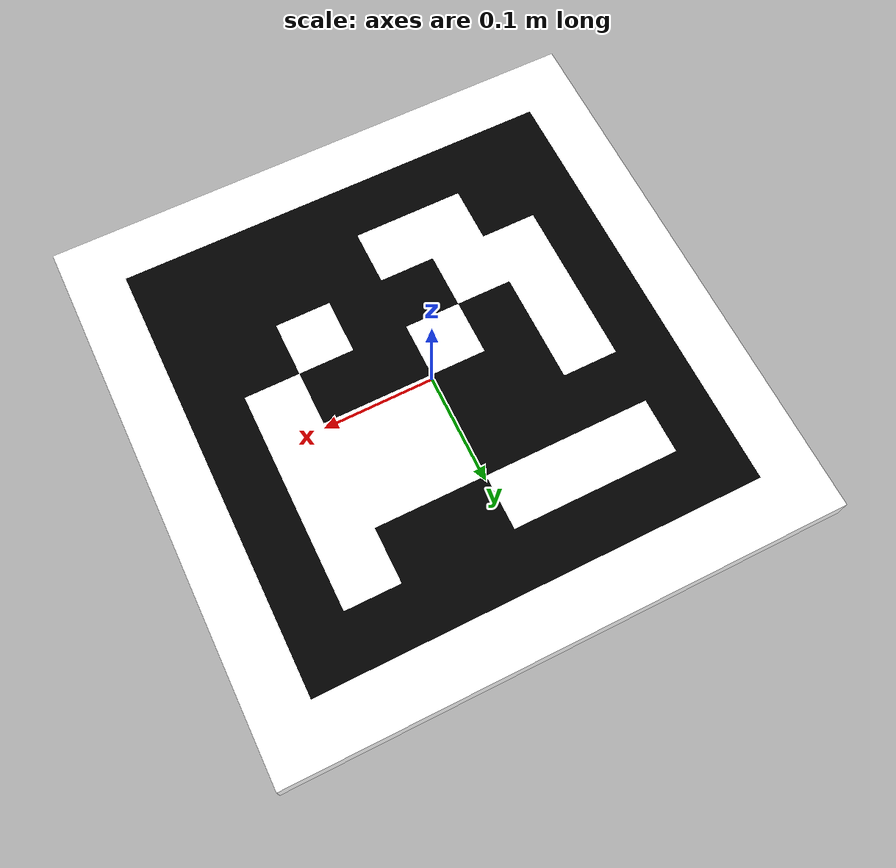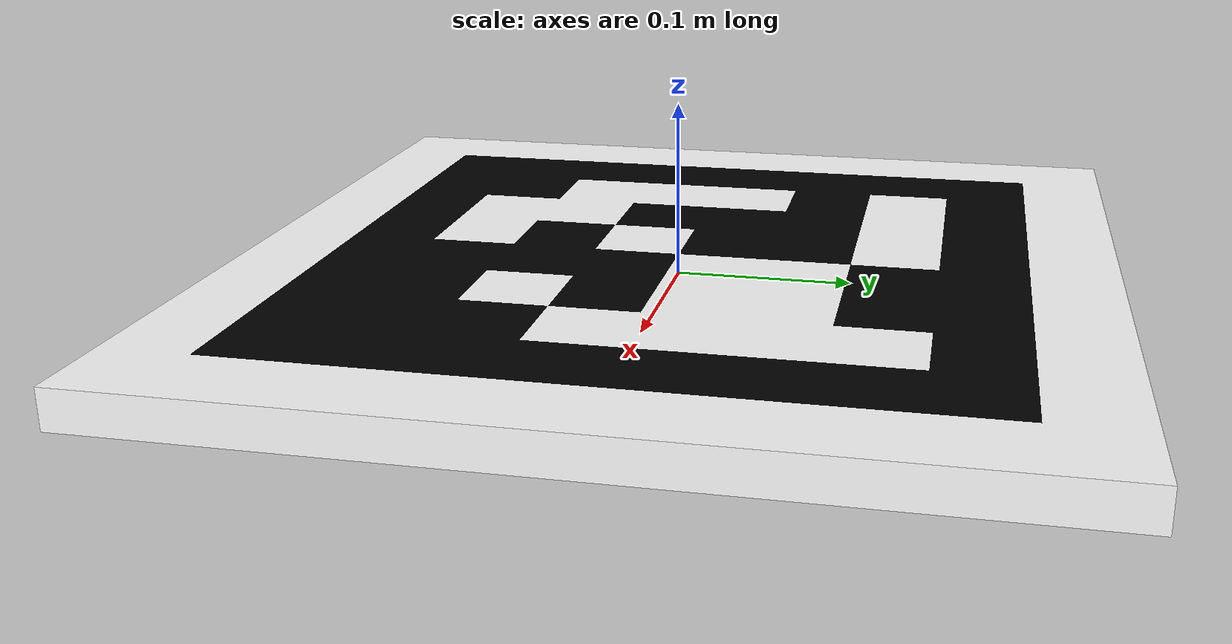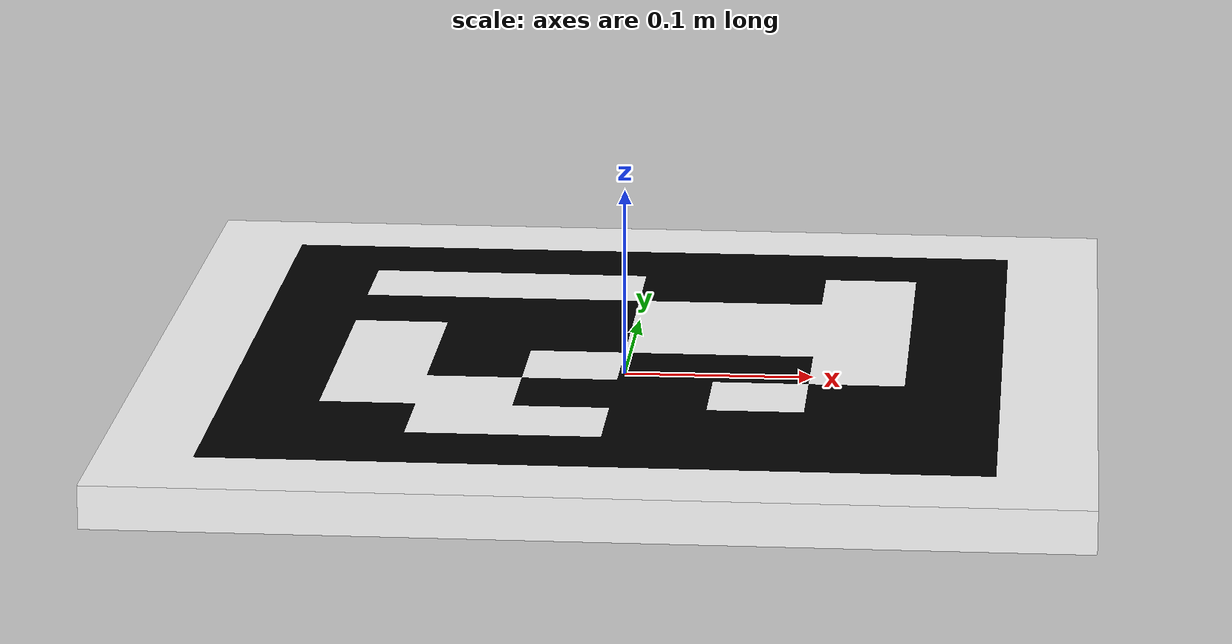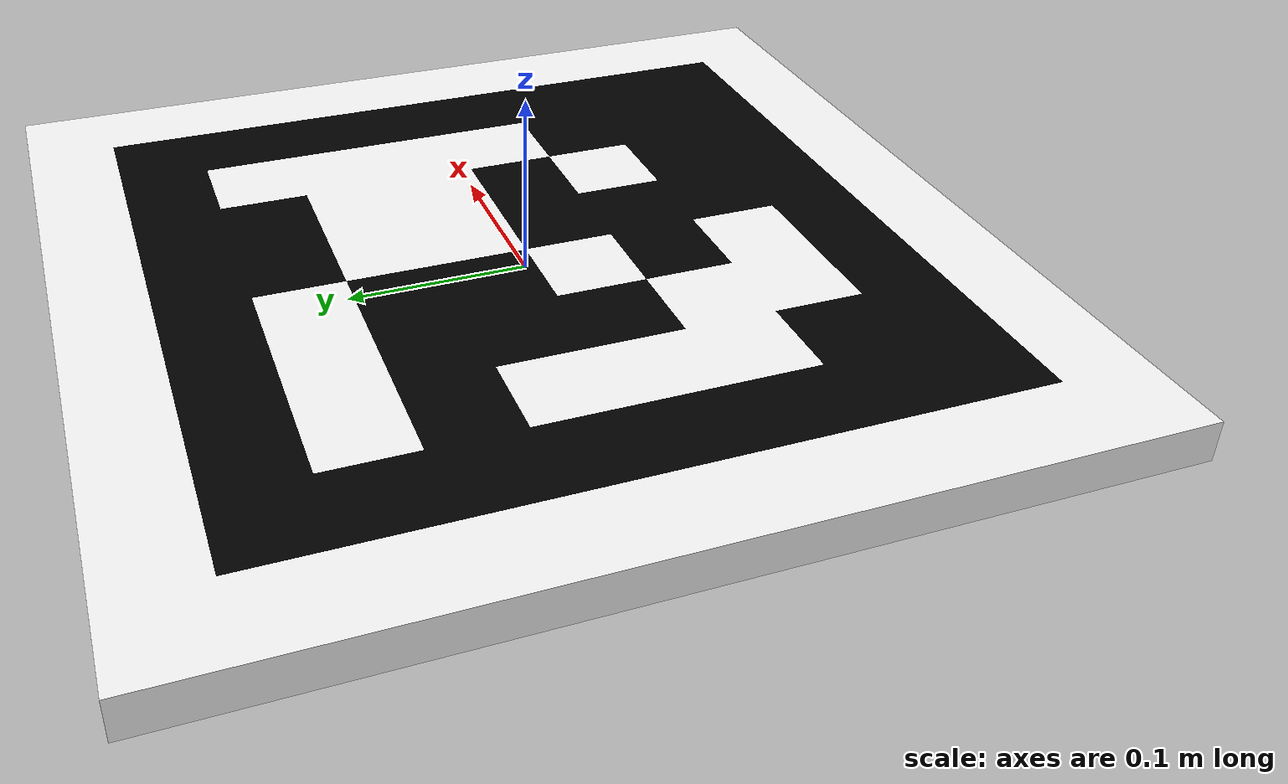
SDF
<?xml version="1.0" ?>

<sdf version="1.6">
  <model name="apriltag_3">
    <static>true</static>
    <link name="link">
      <visual name="visual">
        <geometry>
          <mesh>
            <uri>model://apriltag_3/meshes/apriltag_3.dae</uri>
          <scale>1.0 1.0 1.0</scale></mesh>
        </geometry>
      </visual>
    </link>
  </model>
</sdf>
